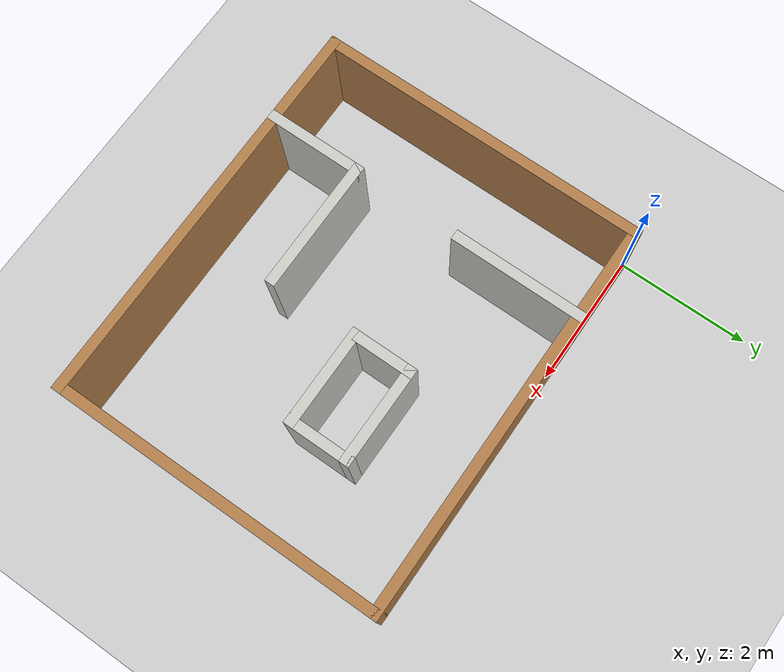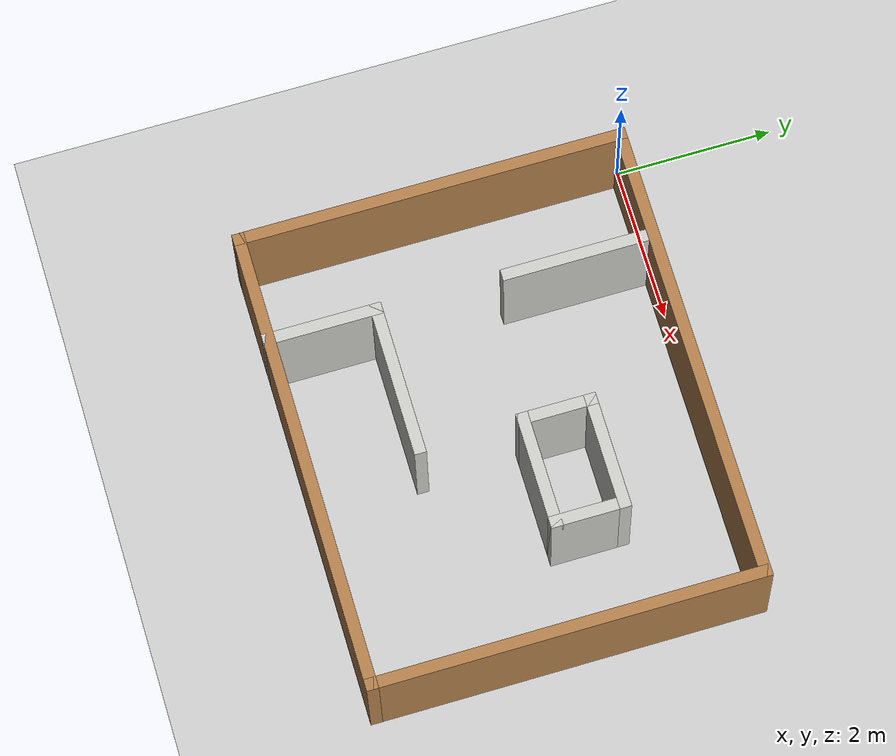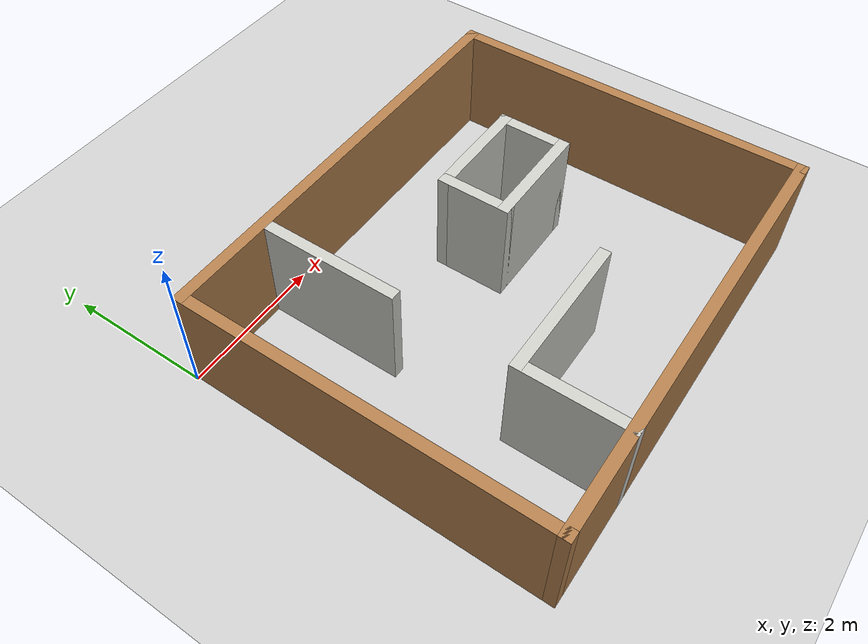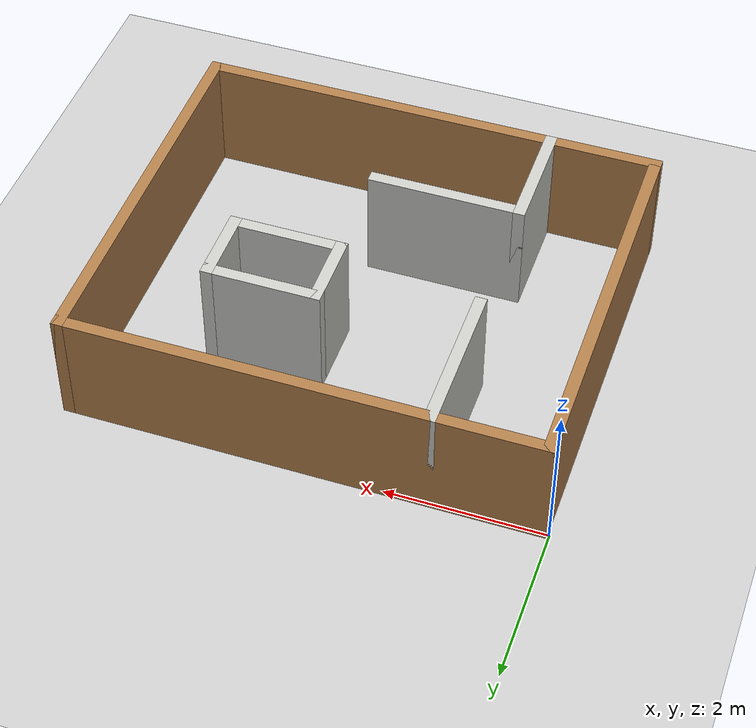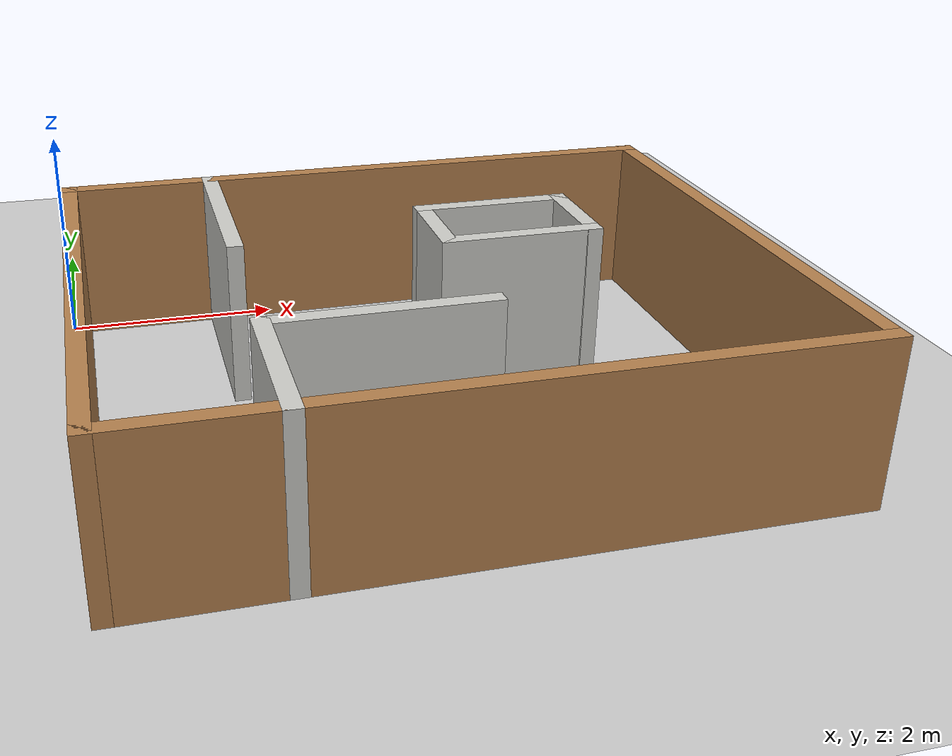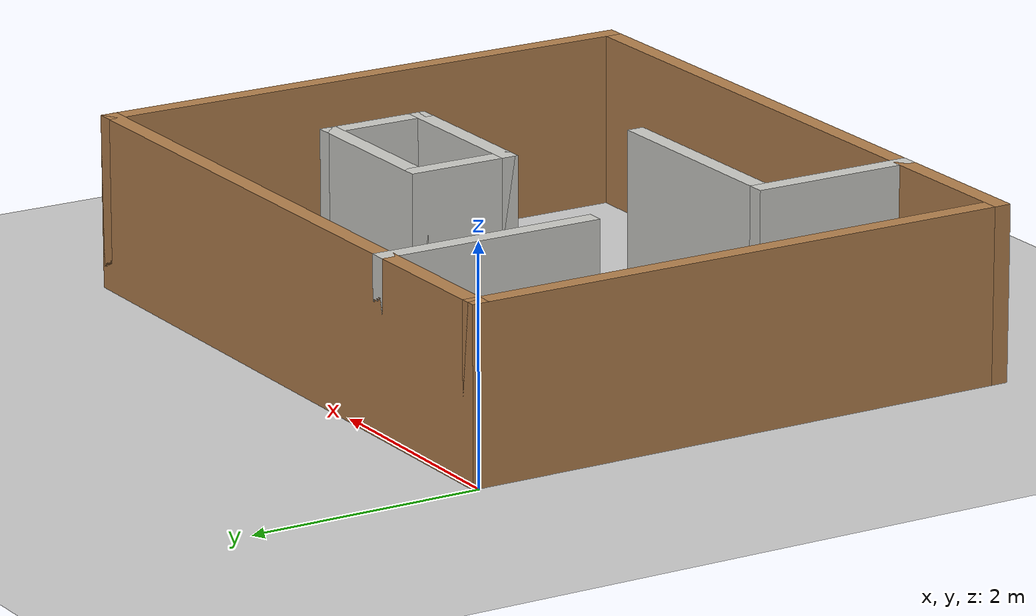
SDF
<sdf version='1.4'>
  <world name='default'>
    <!-- A global light source -->
    <include>
      <uri>model://sun</uri>
    </include>

    <!-- A ground plane -->
    <include>
      <uri>model://ground_plane</uri>
    </include>

    <physics type="ode">
      <real_time_update_rate>1000.0</real_time_update_rate>
      <max_step_size>0.001</max_step_size>
      <real_time_factor>1</real_time_factor>
      <ode>
        <solver>
          <type>quick</type>
          <iters>150</iters>
          <precon_iters>0</precon_iters>
          <sor>1.400000</sor>
          <use_dynamic_moi_rescaling>1</use_dynamic_moi_rescaling>
        </solver>
        <constraints>
          <cfm>0.00001</cfm>
          <erp>0.2</erp>
          <contact_max_correcting_vel>2000.000000</contact_max_correcting_vel>
          <contact_surface_layer>0.01000</contact_surface_layer>
        </constraints>
      </ode>
    </physics>

    <!-- Load world -->
    <include>
      <uri>model://Cuadrilatero</uri>
    </include>

    <scene>
      <ambient>0.4 0.4 0.4 1</ambient>
      <background>0.7 0.7 0.7 1</background>
      <shadows>true</shadows>
    </scene>

    <gui fullscreen='0'>
      <camera name='user_camera'>
        <pose>0.8 0.0 12.0 0 1.5708 0</pose>
        <view_controller>orbit</view_controller>
      </camera>
    </gui>
  </world>
</sdf>

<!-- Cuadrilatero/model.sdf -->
<sdf version='1.7'>
  <model name='Cuadrilatero'>
    <pose>3.009 -2.453 0 0 -0 0</pose>
    <link name='Wall_56'>
      <collision name='Wall_56_Collision'>
        <geometry>
          <box>
            <size>6 0.15 1.5</size>
          </box>
        </geometry>
        <pose>0 0 0.75 0 -0 0</pose>
      </collision>
      <visual name='Wall_56_Visual'>
        <pose>0 0 0.75 0 -0 0</pose>
        <geometry>
          <box>
            <size>6 0.15 1.5</size>
          </box>
        </geometry>
        <material>
          <script>
            <uri>file://media/materials/scripts/gazebo.material</uri>
            <name>Gazebo/Wood</name>
          </script>
          <ambient>0.921569 0.807843 0.615686 1</ambient>
        </material>
        <meta>
          <layer>0</layer>
        </meta>
      </visual>
      <pose>0.009 2.425 0 0 -0 0</pose>
    </link>
    <link name='Wall_58'>
      <collision name='Wall_58_Collision'>
        <geometry>
          <box>
            <size>5 0.15 1.5</size>
          </box>
        </geometry>
        <pose>0 0 0.75 0 -0 0</pose>
      </collision>
      <visual name='Wall_58_Visual'>
        <pose>0 0 0.75 0 -0 0</pose>
        <geometry>
          <box>
            <size>5 0.15 1.5</size>
          </box>
        </geometry>
        <material>
          <script>
            <uri>file://media/materials/scripts/gazebo.material</uri>
            <name>Gazebo/Wood</name>
          </script>
          <ambient>0.921569 0.807843 0.615686 1</ambient>
        </material>
        <meta>
          <layer>0</layer>
        </meta>
      </visual>
      <pose>2.934 -0 0 0 -0 -1.5708</pose>
    </link>
    <link name='Wall_59'>
      <collision name='Wall_59_Collision'>
        <geometry>
          <box>
            <size>6 0.15 1.5</size>
          </box>
        </geometry>
        <pose>0 0 0.75 0 -0 0</pose>
      </collision>
      <visual name='Wall_59_Visual'>
        <pose>0 0 0.75 0 -0 0</pose>
        <geometry>
          <box>
            <size>6 0.15 1.5</size>
          </box>
        </geometry>
        <material>
          <script>
            <uri>file://media/materials/scripts/gazebo.material</uri>
            <name>Gazebo/Wood</name>
          </script>
          <ambient>0.921569 0.807843 0.615686 1</ambient>
        </material>
        <meta>
          <layer>0</layer>
        </meta>
      </visual>
      <pose>0.009 -2.425 0 0 -0 3.14159</pose>
    </link>
    <link name='Wall_60'>
      <collision name='Wall_60_Collision'>
        <geometry>
          <box>
            <size>5 0.15 1.5</size>
          </box>
        </geometry>
        <pose>0 0 0.75 0 -0 0</pose>
      </collision>
      <visual name='Wall_60_Visual'>
        <pose>0 0 0.75 0 -0 0</pose>
        <geometry>
          <box>
            <size>5 0.15 1.5</size>
          </box>
        </geometry>
        <material>
          <script>
            <uri>file://media/materials/scripts/gazebo.material</uri>
            <name>Gazebo/Wood</name>
          </script>
          <ambient>0.921569 0.807843 0.615686 1</ambient>
        </material>
        <meta>
          <layer>0</layer>
        </meta>
      </visual>
      <pose>-2.916 -0 0 0 -0 1.5708</pose>
    </link>
    <link name='Wall_62'>
      <collision name='Wall_62_Collision'>
        <geometry>
          <box>
            <size>2 0.15 1.5</size>
          </box>
        </geometry>
        <pose>0 0 0.75 0 -0 0</pose>
      </collision>
      <visual name='Wall_62_Visual'>
        <pose>0 0 0.75 0 -0 0</pose>
        <geometry>
          <box>
            <size>2 0.15 1.5</size>
          </box>
        </geometry>
        <material>
          <script>
            <uri>file://media/materials/scripts/gazebo.material</uri>
            <name>Gazebo/CeilingTiled</name>
          </script>
          <ambient>1 1 1 1</ambient>
        </material>
        <meta>
          <layer>0</layer>
        </meta>
      </visual>
      <pose>-1.55 1.5 0 0 -0 -1.5708</pose>
    </link>
    <link name='Wall_73'>
      <collision name='Wall_73_Collision'>
        <geometry>
          <box>
            <size>1 0.15 1.5</size>
          </box>
        </geometry>
        <pose>0 0 0.75 0 -0 0</pose>
      </collision>
      <visual name='Wall_73_Visual'>
        <pose>0 0 0.75 0 -0 0</pose>
        <geometry>
          <box>
            <size>1 0.15 1.5</size>
          </box>
        </geometry>
        <material>
          <script>
            <uri>file://media/materials/scripts/gazebo.material</uri>
            <name>Gazebo/CeilingTiled</name>
          </script>
          <ambient>0.435294 0.796078 0.67451 1</ambient>
        </material>
        <meta>
          <layer>0</layer>
        </meta>
      </visual>
      <pose>0.284 0.65 0 0 -0 -1.5708</pose>
    </link>
    <link name='Wall_74'>
      <collision name='Wall_74_Collision'>
        <geometry>
          <box>
            <size>1.5 0.15 1.5</size>
          </box>
        </geometry>
        <pose>0 0 0.75 0 -0 0</pose>
      </collision>
      <visual name='Wall_74_Visual'>
        <pose>0 0 0.75 0 -0 0</pose>
        <geometry>
          <box>
            <size>1.5 0.15 1.5</size>
          </box>
        </geometry>
        <material>
          <script>
            <uri>file://media/materials/scripts/gazebo.material</uri>
            <name>Gazebo/CeilingTiled</name>
          </script>
          <ambient>0.435294 0.796078 0.67451 1</ambient>
        </material>
        <meta>
          <layer>0</layer>
        </meta>
      </visual>
      <pose>0.959 0.225 0 0 -0 0</pose>
    </link>
    <link name='Wall_75'>
      <collision name='Wall_75_Collision'>
        <geometry>
          <box>
            <size>1 0.15 1.5</size>
          </box>
        </geometry>
        <pose>0 0 0.75 0 -0 0</pose>
      </collision>
      <visual name='Wall_75_Visual'>
        <pose>0 0 0.75 0 -0 0</pose>
        <geometry>
          <box>
            <size>1 0.15 1.5</size>
          </box>
        </geometry>
        <material>
          <script>
            <uri>file://media/materials/scripts/gazebo.material</uri>
            <name>Gazebo/CeilingTiled</name>
          </script>
          <ambient>0.435294 0.796078 0.67451 1</ambient>
        </material>
        <meta>
          <layer>0</layer>
        </meta>
      </visual>
      <pose>1.634 0.65 0 0 -0 1.5708</pose>
    </link>
    <link name='Wall_76'>
      <collision name='Wall_76_Collision'>
        <geometry>
          <box>
            <size>1.5 0.15 1.5</size>
          </box>
        </geometry>
        <pose>0 0 0.75 0 -0 0</pose>
      </collision>
      <visual name='Wall_76_Visual'>
        <pose>0 0 0.75 0 -0 0</pose>
        <geometry>
          <box>
            <size>1.5 0.15 1.5</size>
          </box>
        </geometry>
        <material>
          <script>
            <uri>file://media/materials/scripts/gazebo.material</uri>
            <name>Gazebo/CeilingTiled</name>
          </script>
          <ambient>0.435294 0.796078 0.67451 1</ambient>
        </material>
        <meta>
          <layer>0</layer>
        </meta>
      </visual>
      <pose>0.959 1.075 0 0 -0 3.14159</pose>
    </link>
    <link name='Wall_79'>
      <collision name='Wall_79_Collision'>
        <geometry>
          <box>
            <size>1.5 0.15 1.5</size>
          </box>
        </geometry>
        <pose>0 0 0.75 0 -0 0</pose>
      </collision>
      <visual name='Wall_79_Visual'>
        <pose>0 0 0.75 0 -0 0</pose>
        <geometry>
          <box>
            <size>1.5 0.15 1.5</size>
          </box>
        </geometry>
        <material>
          <script>
            <uri>file://media/materials/scripts/gazebo.material</uri>
            <name>Gazebo/CeilingTiled</name>
          </script>
          <ambient>1 1 1 1</ambient>
        </material>
        <meta>
          <layer>0</layer>
        </meta>
      </visual>
      <pose>-1.566 -1.75 0 0 -0 1.5708</pose>
    </link>
    <link name='Wall_80'>
      <collision name='Wall_80_Collision'>
        <geometry>
          <box>
            <size>2 0.15 1.5</size>
          </box>
        </geometry>
        <pose>0 0 0.75 0 -0 0</pose>
      </collision>
      <visual name='Wall_80_Visual'>
        <pose>0 0 0.75 0 -0 0</pose>
        <geometry>
          <box>
            <size>2 0.15 1.5</size>
          </box>
        </geometry>
        <material>
          <script>
            <uri>file://media/materials/scripts/gazebo.material</uri>
            <name>Gazebo/CeilingTiled</name>
          </script>
          <ambient>1 1 1 1</ambient>
        </material>
        <meta>
          <layer>0</layer>
        </meta>
      </visual>
      <pose>-0.641 -1.075 0 0 -0 0</pose>
    </link>
    <static>1</static>
  </model>
</sdf>
